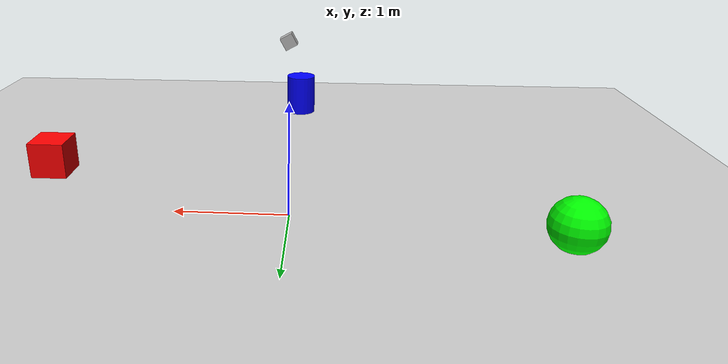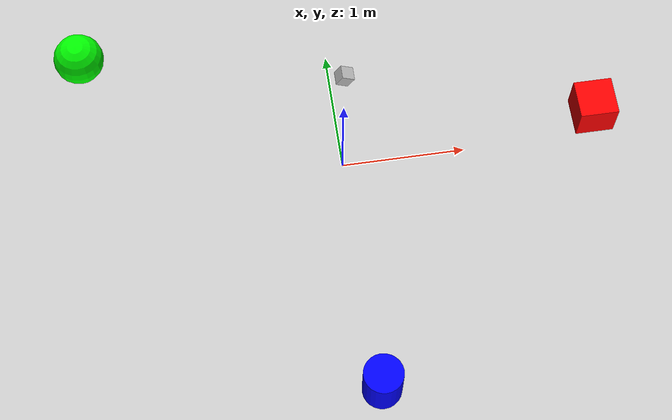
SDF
<?xml version="1.0"?>
<sdf version="1.6">
  <world name="tracking_world">

    <!-- Physics -->
    <physics type="ode">
      <max_step_size>0.001</max_step_size>
      <real_time_factor>1.0</real_time_factor>
    </physics>

    <!-- Lighting -->
    <include>
      <uri>model://sun</uri>
    </include>

    <!-- Ground plane -->
    <include>
      <uri>model://ground_plane</uri>
    </include>

    <!-- Static camera with RGB-D sensor -->
    <model name="camera_stand">
      <static>true</static>
      <pose>0 0 1.5 0 0.5 0</pose>

      <link name="camera_link">
        <visual name="visual">
          <geometry>
            <box>
              <size>0.1 0.1 0.1</size>
            </box>
          </geometry>
        </visual>

        <sensor name="rgbd_camera" type="depth">
          <update_rate>30</update_rate>
          <camera name="camera">
            <horizontal_fov>1.047</horizontal_fov>
            <image>
              <width>640</width>
              <height>480</height>
              <format>R8G8B8</format>
            </image>
            <clip>
              <near>0.1</near>
              <far>10.0</far>
            </clip>
          </camera>

          <plugin name="camera_plugin" filename="libgazebo_ros_camera.so">
            <ros>
              <namespace>/camera</namespace>
              <remapping>image_raw:=rgb/image_raw</remapping>
              <remapping>depth/image_raw:=depth/image_raw</remapping>
              <remapping>camera_info:=rgb/camera_info</remapping>
              <remapping>depth/camera_info:=depth/camera_info</remapping>
            </ros>
            <camera_name>rgbd</camera_name>
            <frame_name>camera_link</frame_name>
            <hack_baseline>0.07</hack_baseline>
          </plugin>
        </sensor>
      </link>
    </model>

    <!-- Red cube (moving in circle) -->
    <model name="red_cube">
      <pose>2 0 0.5 0 0 0</pose>
      <link name="link">
        <collision name="collision">
          <geometry>
            <box>
              <size>0.3 0.3 0.3</size>
            </box>
          </geometry>
        </collision>
        <visual name="visual">
          <geometry>
            <box>
              <size>0.3 0.3 0.3</size>
            </box>
          </geometry>
          <material>
            <ambient>1 0 0 1</ambient>
            <diffuse>1 0 0 1</diffuse>
          </material>
        </visual>
        <inertial>
          <mass>1.0</mass>
          <inertia>
            <ixx>0.015</ixx>
            <iyy>0.015</iyy>
            <izz>0.015</izz>
          </inertia>
        </inertial>
      </link>

      <plugin name="move_red" filename="libgazebo_ros_planar_move.so">
        <ros>
          <namespace>/red_cube</namespace>
          <remapping>cmd_vel:=cmd_vel</remapping>
        </ros>
        <update_rate>100</update_rate>
      </plugin>
    </model>

    <!-- Green sphere -->
    <model name="green_sphere">
      <pose>-2 1 0.5 0 0 0</pose>
      <link name="link">
        <collision name="collision">
          <geometry>
            <sphere>
              <radius>0.2</radius>
            </sphere>
          </geometry>
        </collision>
        <visual name="visual">
          <geometry>
            <sphere>
              <radius>0.2</radius>
            </sphere>
          </geometry>
          <material>
            <ambient>0 1 0 1</ambient>
            <diffuse>0 1 0 1</diffuse>
          </material>
        </visual>
        <inertial>
          <mass>1.0</mass>
          <inertia>
            <ixx>0.016</ixx>
            <iyy>0.016</iyy>
            <izz>0.016</izz>
          </inertia>
        </inertial>
      </link>

      <plugin name="move_green" filename="libgazebo_ros_planar_move.so">
        <ros>
          <namespace>/green_sphere</namespace>
          <remapping>cmd_vel:=cmd_vel</remapping>
        </ros>
        <update_rate>100</update_rate>
      </plugin>
    </model>

    <!-- Blue cylinder -->
    <model name="blue_cylinder">
      <pose>0 -2 0.5 0 0 0</pose>
      <link name="link">
        <collision name="collision">
          <geometry>
            <cylinder>
              <radius>0.15</radius>
              <length>0.4</length>
            </cylinder>
          </geometry>
        </collision>
        <visual name="visual">
          <geometry>
            <cylinder>
              <radius>0.15</radius>
              <length>0.4</length>
            </cylinder>
          </geometry>
          <material>
            <ambient>0 0 1 1</ambient>
            <diffuse>0 0 1 1</diffuse>
          </material>
        </visual>
        <inertial>
          <mass>1.0</mass>
          <inertia>
            <ixx>0.02</ixx>
            <iyy>0.02</iyy>
            <izz>0.005</izz>
          </inertia>
        </inertial>
      </link>

      <plugin name="move_blue" filename="libgazebo_ros_planar_move.so">
        <ros>
          <namespace>/blue_cylinder</namespace>
          <remapping>cmd_vel:=cmd_vel</remapping>
        </ros>
        <update_rate>100</update_rate>
      </plugin>
    </model>

  </world>
</sdf>
